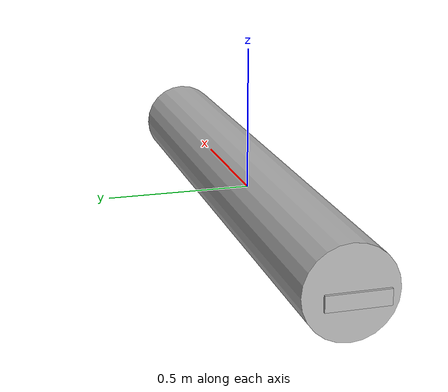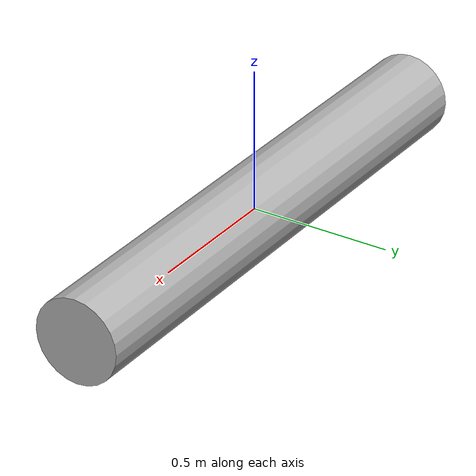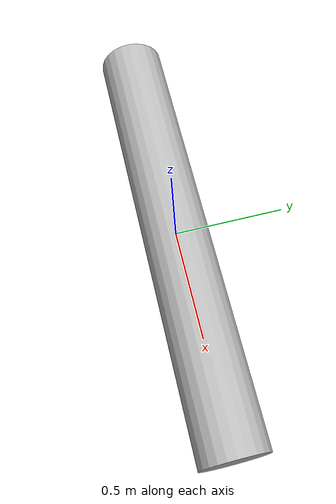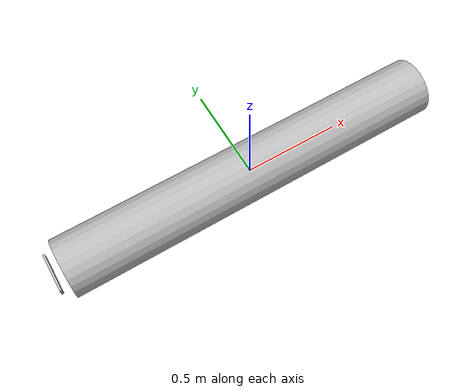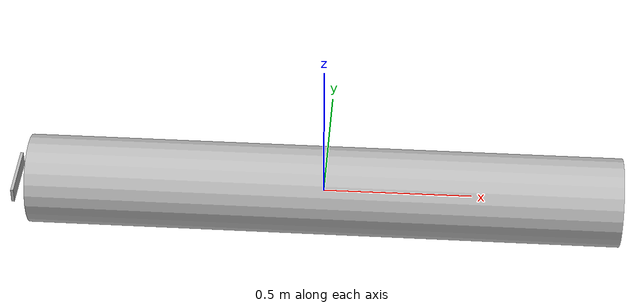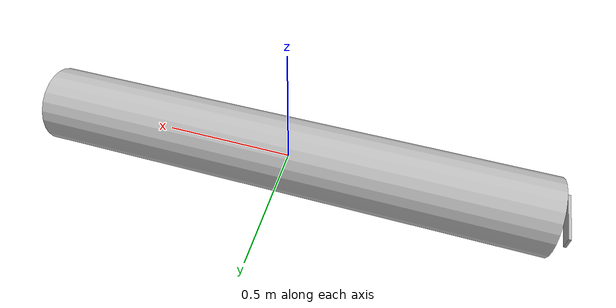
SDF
<?xml version="1.0" ?>
<sdf version="1.6">
  <world name="thruster">
    <plugin
      filename="gz-sim-apply-link-wrench-system"
      name="gz::sim::systems::ApplyLinkWrench">
    </plugin>

    <physics name="fast" type="none">
      <!-- Zero to run as fast as possible -->
      <real_time_factor>0</real_time_factor>
    </physics>

    <!-- prevent sinking -->
    <gravity>0 0 0</gravity>

    <plugin
      filename="gz-sim-physics-system"
      name="gz::sim::systems::Physics">
    </plugin>
    <plugin
      filename="gz-sim-scene-broadcaster-system"
      name="gz::sim::systems::SceneBroadcaster">
    </plugin>

    <light type="directional" name="sun">
      <cast_shadows>true</cast_shadows>
      <pose>0 0 10 0 0 0</pose>
      <diffuse>1 1 1 1</diffuse>
      <specular>0.5 0.5 0.5 1</specular>
      <attenuation>
        <range>1000</range>
        <constant>0.9</constant>
        <linear>0.01</linear>
        <quadratic>0.001</quadratic>
      </attenuation>
      <direction>-0.5 0.1 -0.9</direction>
    </light>

    <model name="sub">

      <link name="body">
        <pose>0 0 0   0 1.57 0</pose>
        <inertial>
          <mass>100</mass>
          <inertia>
            <ixx>33.89</ixx>
            <ixy>0</ixy>
            <ixz>0</ixz>
            <iyy>33.89</iyy>
            <iyz>0</iyz>
            <izz>1.125</izz>
          </inertia>
        </inertial>
        <visual name="visual">
          <geometry>
            <cylinder>
              <length>2</length>
              <radius>0.15</radius>
            </cylinder>
          </geometry>
        </visual>
      </link>

      <link name="propeller">
        <pose>-1.05 0 0 0 0 0</pose>
        <inertial>
          <mass>0.1</mass>
          <inertia>
            <ixx>0.000354167</ixx>
            <ixy>0</ixy>
            <ixz>0</ixz>
            <iyy>0.000021667</iyy>
            <iyz>0</iyz>
            <izz>0.000334167</izz>
          </inertia>
        </inertial>
        <visual name="visual">
          <geometry>
            <box>
              <size>0.01 0.2 0.05</size>
            </box>
          </geometry>
        </visual>
      </link>

      <joint name="propeller_joint" type="revolute">
        <!-- flips X to -X -->
        <pose>0 0 0  0 3.14159265 0</pose>
        <parent>body</parent>
        <child>propeller</child>
        <axis>
          <!-- flips -X back to X -->
          <xyz>-1 0 0</xyz>
          <limit>
            <lower>-1e+12</lower>
            <upper>1e+12</upper>
            <effort>-1</effort>
            <velocity>-1</velocity>
          </limit>
        </axis>
      </joint>

      <plugin
        filename="gz-sim-thruster-system"
        name="gz::sim::systems::Thruster">
        <joint_name>propeller_joint</joint_name>
        <thrust_coefficient>0.004</thrust_coefficient>
        <fluid_density>1000</fluid_density>
        <propeller_diameter>0.2</propeller_diameter>
        <max_thrust_cmd>300</max_thrust_cmd>
        <min_thrust_cmd>0</min_thrust_cmd>
      </plugin>
    </model>

  </world>
</sdf>
